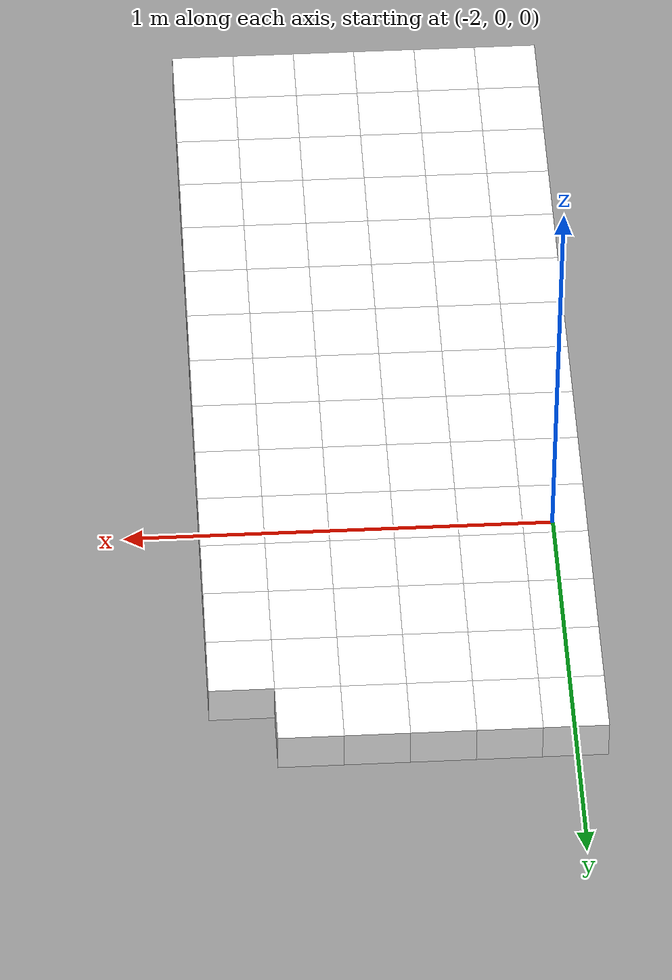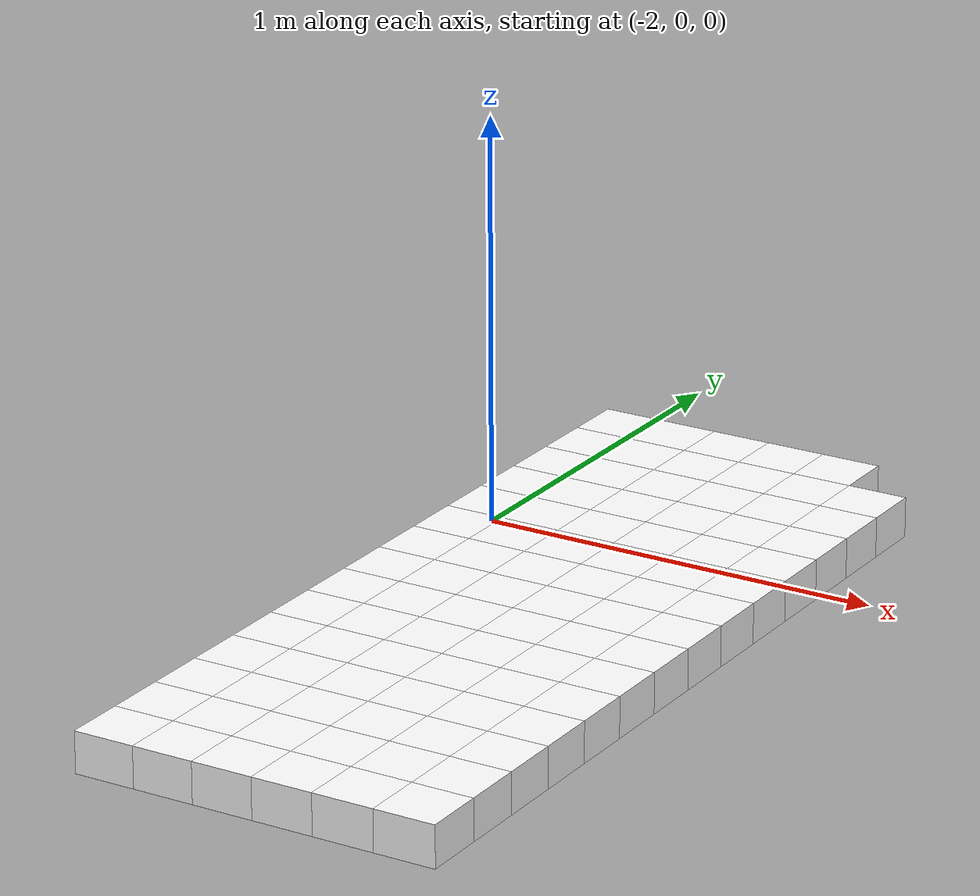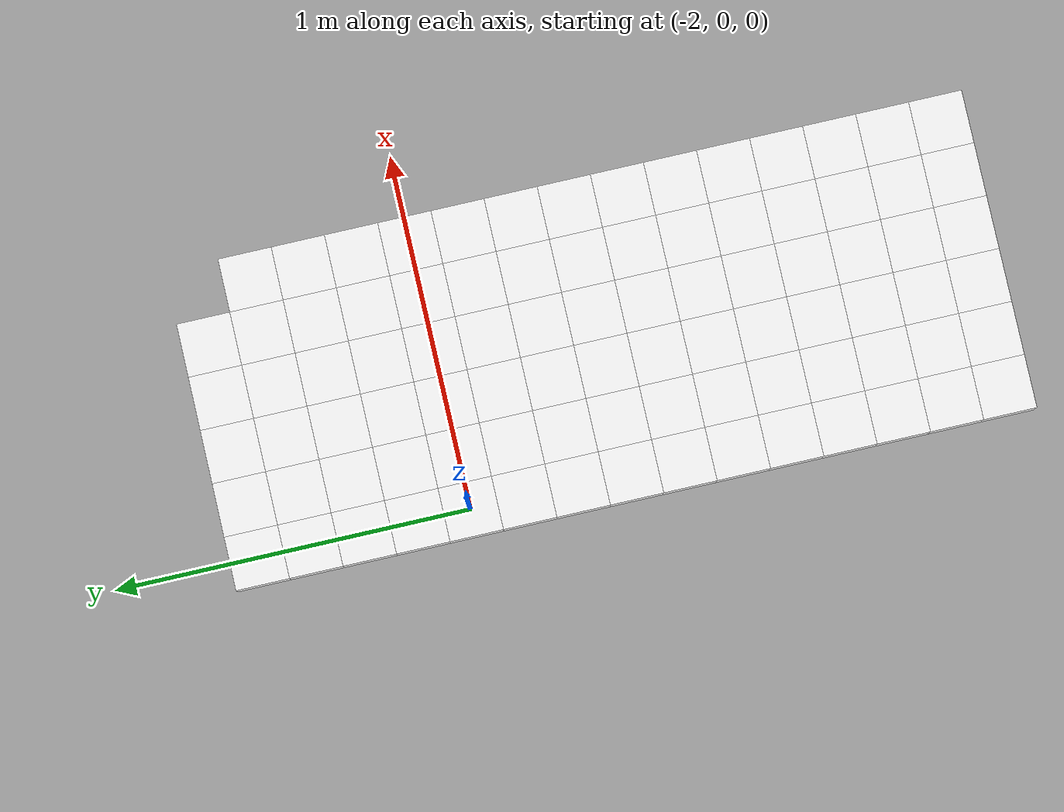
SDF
<sdf version="1.7">
 <world name="default">
  <include><uri>model://sun</uri></include>
  <model name="static_environment">
   <static>true</static>
   <link name="region_0">
    <pose>-2.0 0.6 0.0 0.0 0.0 4.7123</pose>
    <collision name="region_0_collision">
     <geometry><box><size>0.15 0.15 0.1</size></box></geometry>
     <surface><friction><ode><mu>1.0</mu><mu2>1.0</mu2></ode></friction></surface>
    </collision>
    <visual name="region_0_visual">
     <geometry><box><size>0.15 0.15 0.1</size></box></geometry>
     <material><ambient>1.0 1.0 1.0 1.0</ambient><diffuse>1.0 1.0 1.0 1.0</diffuse></material>
    </visual>
   </link>
   <link name="region_1">
    <pose>-2.0000133470576857 0.4500000005938132 0.0 0.0 0.0 4.7123</pose>
    <collision name="region_1_collision">
     <geometry><box><size>0.15 0.15 0.1</size></box></geometry>
     <surface><friction><ode><mu>1.0</mu><mu2>1.0</mu2></ode></friction></surface>
    </collision>
    <visual name="region_1_visual">
     <geometry><box><size>0.15 0.15 0.1</size></box></geometry>
     <material><ambient>1.0 1.0 1.0 1.0</ambient><diffuse>1.0 1.0 1.0 1.0</diffuse></material>
    </visual>
   </link>
   <link name="region_2">
    <pose>-2.000026694115372 0.3000000011876263 0.0 0.0 0.0 4.7123</pose>
    <collision name="region_2_collision">
     <geometry><box><size>0.15 0.15 0.1</size></box></geometry>
     <surface><friction><ode><mu>1.0</mu><mu2>1.0</mu2></ode></friction></surface>
    </collision>
    <visual name="region_2_visual">
     <geometry><box><size>0.15 0.15 0.1</size></box></geometry>
     <material><ambient>1.0 1.0 1.0 1.0</ambient><diffuse>1.0 1.0 1.0 1.0</diffuse></material>
    </visual>
   </link>
   <link name="region_3">
    <pose>-2.0000400411730577 0.15000000178143952 0.0 0.0 0.0 4.7123</pose>
    <collision name="region_3_collision">
     <geometry><box><size>0.15 0.15 0.1</size></box></geometry>
     <surface><friction><ode><mu>1.0</mu><mu2>1.0</mu2></ode></friction></surface>
    </collision>
    <visual name="region_3_visual">
     <geometry><box><size>0.15 0.15 0.1</size></box></geometry>
     <material><ambient>1.0 1.0 1.0 1.0</ambient><diffuse>1.0 1.0 1.0 1.0</diffuse></material>
    </visual>
   </link>
   <link name="region_4">
    <pose>-2.0000533882307434 2.375252661224181e-09 0.0 0.0 0.0 4.7123</pose>
    <collision name="region_4_collision">
     <geometry><box><size>0.15 0.15 0.1</size></box></geometry>
     <surface><friction><ode><mu>1.0</mu><mu2>1.0</mu2></ode></friction></surface>
    </collision>
    <visual name="region_4_visual">
     <geometry><box><size>0.15 0.15 0.1</size></box></geometry>
     <material><ambient>1.0 1.0 1.0 1.0</ambient><diffuse>1.0 1.0 1.0 1.0</diffuse></material>
    </visual>
   </link>
   <link name="region_5">
    <pose>-2.0000667352884296 -0.14999999703093414 0.0 0.0 0.0 4.7123</pose>
    <collision name="region_5_collision">
     <geometry><box><size>0.15 0.15 0.1</size></box></geometry>
     <surface><friction><ode><mu>1.0</mu><mu2>1.0</mu2></ode></friction></surface>
    </collision>
    <visual name="region_5_visual">
     <geometry><box><size>0.15 0.15 0.1</size></box></geometry>
     <material><ambient>1.0 1.0 1.0 1.0</ambient><diffuse>1.0 1.0 1.0 1.0</diffuse></material>
    </visual>
   </link>
   <link name="region_6">
    <pose>-2.0000800823461153 -0.29999999643712105 0.0 0.0 0.0 4.7123</pose>
    <collision name="region_6_collision">
     <geometry><box><size>0.15 0.15 0.1</size></box></geometry>
     <surface><friction><ode><mu>1.0</mu><mu2>1.0</mu2></ode></friction></surface>
    </collision>
    <visual name="region_6_visual">
     <geometry><box><size>0.15 0.15 0.1</size></box></geometry>
     <material><ambient>1.0 1.0 1.0 1.0</ambient><diffuse>1.0 1.0 1.0 1.0</diffuse></material>
    </visual>
   </link>
   <link name="region_7">
    <pose>-2.000093429403801 -0.44999999584330796 0.0 0.0 0.0 4.7123</pose>
    <collision name="region_7_collision">
     <geometry><box><size>0.15 0.15 0.1</size></box></geometry>
     <surface><friction><ode><mu>1.0</mu><mu2>1.0</mu2></ode></friction></surface>
    </collision>
    <visual name="region_7_visual">
     <geometry><box><size>0.15 0.15 0.1</size></box></geometry>
     <material><ambient>1.0 1.0 1.0 1.0</ambient><diffuse>1.0 1.0 1.0 1.0</diffuse></material>
    </visual>
   </link>
   <link name="region_8">
    <pose>-2.000106776461487 -0.5999999952494947 0.0 0.0 0.0 4.7123</pose>
    <collision name="region_8_collision">
     <geometry><box><size>0.15 0.15 0.1</size></box></geometry>
     <surface><friction><ode><mu>1.0</mu><mu2>1.0</mu2></ode></friction></surface>
    </collision>
    <visual name="region_8_visual">
     <geometry><box><size>0.15 0.15 0.1</size></box></geometry>
     <material><ambient>1.0 1.0 1.0 1.0</ambient><diffuse>1.0 1.0 1.0 1.0</diffuse></material>
    </visual>
   </link>
   <link name="region_9">
    <pose>-2.000120123519173 -0.7499999946556813 0.0 0.0 0.0 4.7123</pose>
    <collision name="region_9_collision">
     <geometry><box><size>0.15 0.15 0.1</size></box></geometry>
     <surface><friction><ode><mu>1.0</mu><mu2>1.0</mu2></ode></friction></surface>
    </collision>
    <visual name="region_9_visual">
     <geometry><box><size>0.15 0.15 0.1</size></box></geometry>
     <material><ambient>1.0 1.0 1.0 1.0</ambient><diffuse>1.0 1.0 1.0 1.0</diffuse></material>
    </visual>
   </link>
   <link name="region_10">
    <pose>-2.0001334705768588 -0.8999999940618683 0.0 0.0 0.0 4.7123</pose>
    <collision name="region_10_collision">
     <geometry><box><size>0.15 0.15 0.1</size></box></geometry>
     <surface><friction><ode><mu>1.0</mu><mu2>1.0</mu2></ode></friction></surface>
    </collision>
    <visual name="region_10_visual">
     <geometry><box><size>0.15 0.15 0.1</size></box></geometry>
     <material><ambient>1.0 1.0 1.0 1.0</ambient><diffuse>1.0 1.0 1.0 1.0</diffuse></material>
    </visual>
   </link>
   <link name="region_11">
    <pose>-2.0001468176345445 -1.049999993468055 0.0 0.0 0.0 4.7123</pose>
    <collision name="region_11_collision">
     <geometry><box><size>0.15 0.15 0.1</size></box></geometry>
     <surface><friction><ode><mu>1.0</mu><mu2>1.0</mu2></ode></friction></surface>
    </collision>
    <visual name="region_11_visual">
     <geometry><box><size>0.15 0.15 0.1</size></box></geometry>
     <material><ambient>1.0 1.0 1.0 1.0</ambient><diffuse>1.0 1.0 1.0 1.0</diffuse></material>
    </visual>
   </link>
   <link name="region_12">
    <pose>-2.0001601646922307 -1.1999999928742415 0.0 0.0 0.0 4.7123</pose>
    <collision name="region_12_collision">
     <geometry><box><size>0.15 0.15 0.1</size></box></geometry>
     <surface><friction><ode><mu>1.0</mu><mu2>1.0</mu2></ode></friction></surface>
    </collision>
    <visual name="region_12_visual">
     <geometry><box><size>0.15 0.15 0.1</size></box></geometry>
     <material><ambient>1.0 1.0 1.0 1.0</ambient><diffuse>1.0 1.0 1.0 1.0</diffuse></material>
    </visual>
   </link>
   <link name="region_13">
    <pose>-2.0001735117499164 -1.3499999922804284 0.0 0.0 0.0 4.7123</pose>
    <collision name="region_13_collision">
     <geometry><box><size>0.15 0.15 0.1</size></box></geometry>
     <surface><friction><ode><mu>1.0</mu><mu2>1.0</mu2></ode></friction></surface>
    </collision>
    <visual name="region_13_visual">
     <geometry><box><size>0.15 0.15 0.1</size></box></geometry>
     <material><ambient>1.0 1.0 1.0 1.0</ambient><diffuse>1.0 1.0 1.0 1.0</diffuse></material>
    </visual>
   </link>
   <link name="region_14">
    <pose>-2.000186858807602 -1.4999999916866154 0.0 0.0 0.0 4.7123</pose>
    <collision name="region_14_collision">
     <geometry><box><size>0.15 0.15 0.1</size></box></geometry>
     <surface><friction><ode><mu>1.0</mu><mu2>1.0</mu2></ode></friction></surface>
    </collision>
    <visual name="region_14_visual">
     <geometry><box><size>0.15 0.15 0.1</size></box></geometry>
     <material><ambient>1.0 1.0 1.0 1.0</ambient><diffuse>1.0 1.0 1.0 1.0</diffuse></material>
    </visual>
   </link>
   <link name="region_20">
    <pose>-1.850000000593813 0.5999866529423141 0.0 0.0 0.0 4.7123</pose>
    <collision name="region_20_collision">
     <geometry><box><size>0.15 0.15 0.1</size></box></geometry>
     <surface><friction><ode><mu>1.0</mu><mu2>1.0</mu2></ode></friction></surface>
    </collision>
    <visual name="region_20_visual">
     <geometry><box><size>0.15 0.15 0.1</size></box></geometry>
     <material><ambient>1.0 1.0 1.0 1.0</ambient><diffuse>1.0 1.0 1.0 1.0</diffuse></material>
    </visual>
   </link>
   <link name="region_21">
    <pose>-1.850013347651499 0.44998665353612727 0.0 0.0 0.0 4.7123</pose>
    <collision name="region_21_collision">
     <geometry><box><size>0.15 0.15 0.1</size></box></geometry>
     <surface><friction><ode><mu>1.0</mu><mu2>1.0</mu2></ode></friction></surface>
    </collision>
    <visual name="region_21_visual">
     <geometry><box><size>0.15 0.15 0.1</size></box></geometry>
     <material><ambient>1.0 1.0 1.0 1.0</ambient><diffuse>1.0 1.0 1.0 1.0</diffuse></material>
    </visual>
   </link>
   <link name="region_22">
    <pose>-1.850026694709185 0.29998665412994047 0.0 0.0 0.0 4.7123</pose>
    <collision name="region_22_collision">
     <geometry><box><size>0.15 0.15 0.1</size></box></geometry>
     <surface><friction><ode><mu>1.0</mu><mu2>1.0</mu2></ode></friction></surface>
    </collision>
    <visual name="region_22_visual">
     <geometry><box><size>0.15 0.15 0.1</size></box></geometry>
     <material><ambient>1.0 1.0 1.0 1.0</ambient><diffuse>1.0 1.0 1.0 1.0</diffuse></material>
    </visual>
   </link>
   <link name="region_23">
    <pose>-1.8500400417668708 0.14998665472375367 0.0 0.0 0.0 4.7123</pose>
    <collision name="region_23_collision">
     <geometry><box><size>0.15 0.15 0.1</size></box></geometry>
     <surface><friction><ode><mu>1.0</mu><mu2>1.0</mu2></ode></friction></surface>
    </collision>
    <visual name="region_23_visual">
     <geometry><box><size>0.15 0.15 0.1</size></box></geometry>
     <material><ambient>1.0 1.0 1.0 1.0</ambient><diffuse>1.0 1.0 1.0 1.0</diffuse></material>
    </visual>
   </link>
   <link name="region_24">
    <pose>-1.8500533888245567 -1.3344682433191757e-05 0.0 0.0 0.0 4.7123</pose>
    <collision name="region_24_collision">
     <geometry><box><size>0.15 0.15 0.1</size></box></geometry>
     <surface><friction><ode><mu>1.0</mu><mu2>1.0</mu2></ode></friction></surface>
    </collision>
    <visual name="region_24_visual">
     <geometry><box><size>0.15 0.15 0.1</size></box></geometry>
     <material><ambient>1.0 1.0 1.0 1.0</ambient><diffuse>1.0 1.0 1.0 1.0</diffuse></material>
    </visual>
   </link>
   <link name="region_25">
    <pose>-1.8500667358822425 -0.15001334408862 0.0 0.0 0.0 4.7123</pose>
    <collision name="region_25_collision">
     <geometry><box><size>0.15 0.15 0.1</size></box></geometry>
     <surface><friction><ode><mu>1.0</mu><mu2>1.0</mu2></ode></friction></surface>
    </collision>
    <visual name="region_25_visual">
     <geometry><box><size>0.15 0.15 0.1</size></box></geometry>
     <material><ambient>1.0 1.0 1.0 1.0</ambient><diffuse>1.0 1.0 1.0 1.0</diffuse></material>
    </visual>
   </link>
   <link name="region_26">
    <pose>-1.8500800829399284 -0.3000133434948069 0.0 0.0 0.0 4.7123</pose>
    <collision name="region_26_collision">
     <geometry><box><size>0.15 0.15 0.1</size></box></geometry>
     <surface><friction><ode><mu>1.0</mu><mu2>1.0</mu2></ode></friction></surface>
    </collision>
    <visual name="region_26_visual">
     <geometry><box><size>0.15 0.15 0.1</size></box></geometry>
     <material><ambient>1.0 1.0 1.0 1.0</ambient><diffuse>1.0 1.0 1.0 1.0</diffuse></material>
    </visual>
   </link>
   <link name="region_27">
    <pose>-1.8500934299976144 -0.45001334290099393 0.0 0.0 0.0 4.7123</pose>
    <collision name="region_27_collision">
     <geometry><box><size>0.15 0.15 0.1</size></box></geometry>
     <surface><friction><ode><mu>1.0</mu><mu2>1.0</mu2></ode></friction></surface>
    </collision>
    <visual name="region_27_visual">
     <geometry><box><size>0.15 0.15 0.1</size></box></geometry>
     <material><ambient>1.0 1.0 1.0 1.0</ambient><diffuse>1.0 1.0 1.0 1.0</diffuse></material>
    </visual>
   </link>
   <link name="region_28">
    <pose>-1.8501067770553001 -0.6000133423071806 0.0 0.0 0.0 4.7123</pose>
    <collision name="region_28_collision">
     <geometry><box><size>0.15 0.15 0.1</size></box></geometry>
     <surface><friction><ode><mu>1.0</mu><mu2>1.0</mu2></ode></friction></surface>
    </collision>
    <visual name="region_28_visual">
     <geometry><box><size>0.15 0.15 0.1</size></box></geometry>
     <material><ambient>1.0 1.0 1.0 1.0</ambient><diffuse>1.0 1.0 1.0 1.0</diffuse></material>
    </visual>
   </link>
   <link name="region_29">
    <pose>-1.850120124112986 -0.7500133417133673 0.0 0.0 0.0 4.7123</pose>
    <collision name="region_29_collision">
     <geometry><box><size>0.15 0.15 0.1</size></box></geometry>
     <surface><friction><ode><mu>1.0</mu><mu2>1.0</mu2></ode></friction></surface>
    </collision>
    <visual name="region_29_visual">
     <geometry><box><size>0.15 0.15 0.1</size></box></geometry>
     <material><ambient>1.0 1.0 1.0 1.0</ambient><diffuse>1.0 1.0 1.0 1.0</diffuse></material>
    </visual>
   </link>
   <link name="region_30">
    <pose>-1.8501334711706718 -0.9000133411195542 0.0 0.0 0.0 4.7123</pose>
    <collision name="region_30_collision">
     <geometry><box><size>0.15 0.15 0.1</size></box></geometry>
     <surface><friction><ode><mu>1.0</mu><mu2>1.0</mu2></ode></friction></surface>
    </collision>
    <visual name="region_30_visual">
     <geometry><box><size>0.15 0.15 0.1</size></box></geometry>
     <material><ambient>1.0 1.0 1.0 1.0</ambient><diffuse>1.0 1.0 1.0 1.0</diffuse></material>
    </visual>
   </link>
   <link name="region_31">
    <pose>-1.8501468182283578 -1.0500133405257408 0.0 0.0 0.0 4.7123</pose>
    <collision name="region_31_collision">
     <geometry><box><size>0.15 0.15 0.1</size></box></geometry>
     <surface><friction><ode><mu>1.0</mu><mu2>1.0</mu2></ode></friction></surface>
    </collision>
    <visual name="region_31_visual">
     <geometry><box><size>0.15 0.15 0.1</size></box></geometry>
     <material><ambient>1.0 1.0 1.0 1.0</ambient><diffuse>1.0 1.0 1.0 1.0</diffuse></material>
    </visual>
   </link>
   <link name="region_32">
    <pose>-1.8501601652860438 -1.2000133399319277 0.0 0.0 0.0 4.7123</pose>
    <collision name="region_32_collision">
     <geometry><box><size>0.15 0.15 0.1</size></box></geometry>
     <surface><friction><ode><mu>1.0</mu><mu2>1.0</mu2></ode></friction></surface>
    </collision>
    <visual name="region_32_visual">
     <geometry><box><size>0.15 0.15 0.1</size></box></geometry>
     <material><ambient>1.0 1.0 1.0 1.0</ambient><diffuse>1.0 1.0 1.0 1.0</diffuse></material>
    </visual>
   </link>
   <link name="region_33">
    <pose>-1.8501735123437295 -1.3500133393381142 0.0 0.0 0.0 4.7123</pose>
    <collision name="region_33_collision">
     <geometry><box><size>0.15 0.15 0.1</size></box></geometry>
     <surface><friction><ode><mu>1.0</mu><mu2>1.0</mu2></ode></friction></surface>
    </collision>
    <visual name="region_33_visual">
     <geometry><box><size>0.15 0.15 0.1</size></box></geometry>
     <material><ambient>1.0 1.0 1.0 1.0</ambient><diffuse>1.0 1.0 1.0 1.0</diffuse></material>
    </visual>
   </link>
   <link name="region_34">
    <pose>-1.8501868594014155 -1.500013338744301 0.0 0.0 0.0 4.7123</pose>
    <collision name="region_34_collision">
     <geometry><box><size>0.15 0.15 0.1</size></box></geometry>
     <surface><friction><ode><mu>1.0</mu><mu2>1.0</mu2></ode></friction></surface>
    </collision>
    <visual name="region_34_visual">
     <geometry><box><size>0.15 0.15 0.1</size></box></geometry>
     <material><ambient>1.0 1.0 1.0 1.0</ambient><diffuse>1.0 1.0 1.0 1.0</diffuse></material>
    </visual>
   </link>
   <link name="region_40">
    <pose>-1.7000000011876264 0.5999733058846283 0.0 0.0 0.0 4.7123</pose>
    <collision name="region_40_collision">
     <geometry><box><size>0.15 0.15 0.1</size></box></geometry>
     <surface><friction><ode><mu>1.0</mu><mu2>1.0</mu2></ode></friction></surface>
    </collision>
    <visual name="region_40_visual">
     <geometry><box><size>0.15 0.15 0.1</size></box></geometry>
     <material><ambient>1.0 1.0 1.0 1.0</ambient><diffuse>1.0 1.0 1.0 1.0</diffuse></material>
    </visual>
   </link>
   <link name="region_41">
    <pose>-1.7000133482453121 0.44997330647844136 0.0 0.0 0.0 4.7123</pose>
    <collision name="region_41_collision">
     <geometry><box><size>0.15 0.15 0.1</size></box></geometry>
     <surface><friction><ode><mu>1.0</mu><mu2>1.0</mu2></ode></friction></surface>
    </collision>
    <visual name="region_41_visual">
     <geometry><box><size>0.15 0.15 0.1</size></box></geometry>
     <material><ambient>1.0 1.0 1.0 1.0</ambient><diffuse>1.0 1.0 1.0 1.0</diffuse></material>
    </visual>
   </link>
   <link name="region_42">
    <pose>-1.700026695302998 0.29997330707225456 0.0 0.0 0.0 4.7123</pose>
    <collision name="region_42_collision">
     <geometry><box><size>0.15 0.15 0.1</size></box></geometry>
     <surface><friction><ode><mu>1.0</mu><mu2>1.0</mu2></ode></friction></surface>
    </collision>
    <visual name="region_42_visual">
     <geometry><box><size>0.15 0.15 0.1</size></box></geometry>
     <material><ambient>1.0 1.0 1.0 1.0</ambient><diffuse>1.0 1.0 1.0 1.0</diffuse></material>
    </visual>
   </link>
   <link name="region_43">
    <pose>-1.7000400423606838 0.14997330766606776 0.0 0.0 0.0 4.7123</pose>
    <collision name="region_43_collision">
     <geometry><box><size>0.15 0.15 0.1</size></box></geometry>
     <surface><friction><ode><mu>1.0</mu><mu2>1.0</mu2></ode></friction></surface>
    </collision>
    <visual name="region_43_visual">
     <geometry><box><size>0.15 0.15 0.1</size></box></geometry>
     <material><ambient>1.0 1.0 1.0 1.0</ambient><diffuse>1.0 1.0 1.0 1.0</diffuse></material>
    </visual>
   </link>
   <link name="region_44">
    <pose>-1.7000533894183698 -2.6691740119044738e-05 0.0 0.0 0.0 4.7123</pose>
    <collision name="region_44_collision">
     <geometry><box><size>0.15 0.15 0.1</size></box></geometry>
     <surface><friction><ode><mu>1.0</mu><mu2>1.0</mu2></ode></friction></surface>
    </collision>
    <visual name="region_44_visual">
     <geometry><box><size>0.15 0.15 0.1</size></box></geometry>
     <material><ambient>1.0 1.0 1.0 1.0</ambient><diffuse>1.0 1.0 1.0 1.0</diffuse></material>
    </visual>
   </link>
   <link name="region_45">
    <pose>-1.7000667364760558 -0.15002669114630585 0.0 0.0 0.0 4.7123</pose>
    <collision name="region_45_collision">
     <geometry><box><size>0.15 0.15 0.1</size></box></geometry>
     <surface><friction><ode><mu>1.0</mu><mu2>1.0</mu2></ode></friction></surface>
    </collision>
    <visual name="region_45_visual">
     <geometry><box><size>0.15 0.15 0.1</size></box></geometry>
     <material><ambient>1.0 1.0 1.0 1.0</ambient><diffuse>1.0 1.0 1.0 1.0</diffuse></material>
    </visual>
   </link>
   <link name="region_46">
    <pose>-1.7000800835337415 -0.30002669055249276 0.0 0.0 0.0 4.7123</pose>
    <collision name="region_46_collision">
     <geometry><box><size>0.15 0.15 0.1</size></box></geometry>
     <surface><friction><ode><mu>1.0</mu><mu2>1.0</mu2></ode></friction></surface>
    </collision>
    <visual name="region_46_visual">
     <geometry><box><size>0.15 0.15 0.1</size></box></geometry>
     <material><ambient>1.0 1.0 1.0 1.0</ambient><diffuse>1.0 1.0 1.0 1.0</diffuse></material>
    </visual>
   </link>
   <link name="region_47">
    <pose>-1.7000934305914275 -0.45002668995867967 0.0 0.0 0.0 4.7123</pose>
    <collision name="region_47_collision">
     <geometry><box><size>0.15 0.15 0.1</size></box></geometry>
     <surface><friction><ode><mu>1.0</mu><mu2>1.0</mu2></ode></friction></surface>
    </collision>
    <visual name="region_47_visual">
     <geometry><box><size>0.15 0.15 0.1</size></box></geometry>
     <material><ambient>1.0 1.0 1.0 1.0</ambient><diffuse>1.0 1.0 1.0 1.0</diffuse></material>
    </visual>
   </link>
   <link name="region_48">
    <pose>-1.7001067776491134 -0.6000266893648664 0.0 0.0 0.0 4.7123</pose>
    <collision name="region_48_collision">
     <geometry><box><size>0.15 0.15 0.1</size></box></geometry>
     <surface><friction><ode><mu>1.0</mu><mu2>1.0</mu2></ode></friction></surface>
    </collision>
    <visual name="region_48_visual">
     <geometry><box><size>0.15 0.15 0.1</size></box></geometry>
     <material><ambient>1.0 1.0 1.0 1.0</ambient><diffuse>1.0 1.0 1.0 1.0</diffuse></material>
    </visual>
   </link>
   <link name="region_49">
    <pose>-1.7001201247067992 -0.750026688771053 0.0 0.0 0.0 4.7123</pose>
    <collision name="region_49_collision">
     <geometry><box><size>0.15 0.15 0.1</size></box></geometry>
     <surface><friction><ode><mu>1.0</mu><mu2>1.0</mu2></ode></friction></surface>
    </collision>
    <visual name="region_49_visual">
     <geometry><box><size>0.15 0.15 0.1</size></box></geometry>
     <material><ambient>1.0 1.0 1.0 1.0</ambient><diffuse>1.0 1.0 1.0 1.0</diffuse></material>
    </visual>
   </link>
   <link name="region_50">
    <pose>-1.7001334717644851 -0.90002668817724 0.0 0.0 0.0 4.7123</pose>
    <collision name="region_50_collision">
     <geometry><box><size>0.15 0.15 0.1</size></box></geometry>
     <surface><friction><ode><mu>1.0</mu><mu2>1.0</mu2></ode></friction></surface>
    </collision>
    <visual name="region_50_visual">
     <geometry><box><size>0.15 0.15 0.1</size></box></geometry>
     <material><ambient>1.0 1.0 1.0 1.0</ambient><diffuse>1.0 1.0 1.0 1.0</diffuse></material>
    </visual>
   </link>
   <link name="region_51">
    <pose>-1.7001468188221711 -1.0500266875834265 0.0 0.0 0.0 4.7123</pose>
    <collision name="region_51_collision">
     <geometry><box><size>0.15 0.15 0.1</size></box></geometry>
     <surface><friction><ode><mu>1.0</mu><mu2>1.0</mu2></ode></friction></surface>
    </collision>
    <visual name="region_51_visual">
     <geometry><box><size>0.15 0.15 0.1</size></box></geometry>
     <material><ambient>1.0 1.0 1.0 1.0</ambient><diffuse>1.0 1.0 1.0 1.0</diffuse></material>
    </visual>
   </link>
   <link name="region_52">
    <pose>-1.7001601658798569 -1.2000266869896135 0.0 0.0 0.0 4.7123</pose>
    <collision name="region_52_collision">
     <geometry><box><size>0.15 0.15 0.1</size></box></geometry>
     <surface><friction><ode><mu>1.0</mu><mu2>1.0</mu2></ode></friction></surface>
    </collision>
    <visual name="region_52_visual">
     <geometry><box><size>0.15 0.15 0.1</size></box></geometry>
     <material><ambient>1.0 1.0 1.0 1.0</ambient><diffuse>1.0 1.0 1.0 1.0</diffuse></material>
    </visual>
   </link>
   <link name="region_53">
    <pose>-1.7001735129375426 -1.3500266863958 0.0 0.0 0.0 4.7123</pose>
    <collision name="region_53_collision">
     <geometry><box><size>0.15 0.15 0.1</size></box></geometry>
     <surface><friction><ode><mu>1.0</mu><mu2>1.0</mu2></ode></friction></surface>
    </collision>
    <visual name="region_53_visual">
     <geometry><box><size>0.15 0.15 0.1</size></box></geometry>
     <material><ambient>1.0 1.0 1.0 1.0</ambient><diffuse>1.0 1.0 1.0 1.0</diffuse></material>
    </visual>
   </link>
   <link name="region_54">
    <pose>-1.7001868599952286 -1.5000266858019873 0.0 0.0 0.0 4.7123</pose>
    <collision name="region_54_collision">
     <geometry><box><size>0.15 0.15 0.1</size></box></geometry>
     <surface><friction><ode><mu>1.0</mu><mu2>1.0</mu2></ode></friction></surface>
    </collision>
    <visual name="region_54_visual">
     <geometry><box><size>0.15 0.15 0.1</size></box></geometry>
     <material><ambient>1.0 1.0 1.0 1.0</ambient><diffuse>1.0 1.0 1.0 1.0</diffuse></material>
    </visual>
   </link>
   <link name="region_60">
    <pose>-1.5500000017814395 0.5999599588269423 0.0 0.0 0.0 4.7123</pose>
    <collision name="region_60_collision">
     <geometry><box><size>0.15 0.15 0.1</size></box></geometry>
     <surface><friction><ode><mu>1.0</mu><mu2>1.0</mu2></ode></friction></surface>
    </collision>
    <visual name="region_60_visual">
     <geometry><box><size>0.15 0.15 0.1</size></box></geometry>
     <material><ambient>1.0 1.0 1.0 1.0</ambient><diffuse>1.0 1.0 1.0 1.0</diffuse></material>
    </visual>
   </link>
   <link name="region_61">
    <pose>-1.5500133488391254 0.4499599594207555 0.0 0.0 0.0 4.7123</pose>
    <collision name="region_61_collision">
     <geometry><box><size>0.15 0.15 0.1</size></box></geometry>
     <surface><friction><ode><mu>1.0</mu><mu2>1.0</mu2></ode></friction></surface>
    </collision>
    <visual name="region_61_visual">
     <geometry><box><size>0.15 0.15 0.1</size></box></geometry>
     <material><ambient>1.0 1.0 1.0 1.0</ambient><diffuse>1.0 1.0 1.0 1.0</diffuse></material>
    </visual>
   </link>
   <link name="region_62">
    <pose>-1.5500266958968112 0.2999599600145687 0.0 0.0 0.0 4.7123</pose>
    <collision name="region_62_collision">
     <geometry><box><size>0.15 0.15 0.1</size></box></geometry>
     <surface><friction><ode><mu>1.0</mu><mu2>1.0</mu2></ode></friction></surface>
    </collision>
    <visual name="region_62_visual">
     <geometry><box><size>0.15 0.15 0.1</size></box></geometry>
     <material><ambient>1.0 1.0 1.0 1.0</ambient><diffuse>1.0 1.0 1.0 1.0</diffuse></material>
    </visual>
   </link>
   <link name="region_63">
    <pose>-1.5500400429544972 0.1499599606083819 0.0 0.0 0.0 4.7123</pose>
    <collision name="region_63_collision">
     <geometry><box><size>0.15 0.15 0.1</size></box></geometry>
     <surface><friction><ode><mu>1.0</mu><mu2>1.0</mu2></ode></friction></surface>
    </collision>
    <visual name="region_63_visual">
     <geometry><box><size>0.15 0.15 0.1</size></box></geometry>
     <material><ambient>1.0 1.0 1.0 1.0</ambient><diffuse>1.0 1.0 1.0 1.0</diffuse></material>
    </visual>
   </link>
   <link name="region_64">
    <pose>-1.5500533900121831 -4.003879780500874e-05 0.0 0.0 0.0 4.7123</pose>
    <collision name="region_64_collision">
     <geometry><box><size>0.15 0.15 0.1</size></box></geometry>
     <surface><friction><ode><mu>1.0</mu><mu2>1.0</mu2></ode></friction></surface>
    </collision>
    <visual name="region_64_visual">
     <geometry><box><size>0.15 0.15 0.1</size></box></geometry>
     <material><ambient>1.0 1.0 1.0 1.0</ambient><diffuse>1.0 1.0 1.0 1.0</diffuse></material>
    </visual>
   </link>
   <link name="region_65">
    <pose>-1.5500667370698689 -0.1500400382039918 0.0 0.0 0.0 4.7123</pose>
    <collision name="region_65_collision">
     <geometry><box><size>0.15 0.15 0.1</size></box></geometry>
     <surface><friction><ode><mu>1.0</mu><mu2>1.0</mu2></ode></friction></surface>
    </collision>
    <visual name="region_65_visual">
     <geometry><box><size>0.15 0.15 0.1</size></box></geometry>
     <material><ambient>1.0 1.0 1.0 1.0</ambient><diffuse>1.0 1.0 1.0 1.0</diffuse></material>
    </visual>
   </link>
   <link name="region_66">
    <pose>-1.5500800841275548 -0.3000400376101787 0.0 0.0 0.0 4.7123</pose>
    <collision name="region_66_collision">
     <geometry><box><size>0.15 0.15 0.1</size></box></geometry>
     <surface><friction><ode><mu>1.0</mu><mu2>1.0</mu2></ode></friction></surface>
    </collision>
    <visual name="region_66_visual">
     <geometry><box><size>0.15 0.15 0.1</size></box></geometry>
     <material><ambient>1.0 1.0 1.0 1.0</ambient><diffuse>1.0 1.0 1.0 1.0</diffuse></material>
    </visual>
   </link>
   <link name="region_67">
    <pose>-1.5500934311852408 -0.45004003701636563 0.0 0.0 0.0 4.7123</pose>
    <collision name="region_67_collision">
     <geometry><box><size>0.15 0.15 0.1</size></box></geometry>
     <surface><friction><ode><mu>1.0</mu><mu2>1.0</mu2></ode></friction></surface>
    </collision>
    <visual name="region_67_visual">
     <geometry><box><size>0.15 0.15 0.1</size></box></geometry>
     <material><ambient>1.0 1.0 1.0 1.0</ambient><diffuse>1.0 1.0 1.0 1.0</diffuse></material>
    </visual>
   </link>
   <link name="region_68">
    <pose>-1.5501067782429265 -0.6000400364225523 0.0 0.0 0.0 4.7123</pose>
    <collision name="region_68_collision">
     <geometry><box><size>0.15 0.15 0.1</size></box></geometry>
     <surface><friction><ode><mu>1.0</mu><mu2>1.0</mu2></ode></friction></surface>
    </collision>
    <visual name="region_68_visual">
     <geometry><box><size>0.15 0.15 0.1</size></box></geometry>
     <material><ambient>1.0 1.0 1.0 1.0</ambient><diffuse>1.0 1.0 1.0 1.0</diffuse></material>
    </visual>
   </link>
   <link name="region_69">
    <pose>-1.5501201253006125 -0.750040035828739 0.0 0.0 0.0 4.7123</pose>
    <collision name="region_69_collision">
     <geometry><box><size>0.15 0.15 0.1</size></box></geometry>
     <surface><friction><ode><mu>1.0</mu><mu2>1.0</mu2></ode></friction></surface>
    </collision>
    <visual name="region_69_visual">
     <geometry><box><size>0.15 0.15 0.1</size></box></geometry>
     <material><ambient>1.0 1.0 1.0 1.0</ambient><diffuse>1.0 1.0 1.0 1.0</diffuse></material>
    </visual>
   </link>
   <link name="region_70">
    <pose>-1.5501334723582982 -0.9000400352349259 0.0 0.0 0.0 4.7123</pose>
    <collision name="region_70_collision">
     <geometry><box><size>0.15 0.15 0.1</size></box></geometry>
     <surface><friction><ode><mu>1.0</mu><mu2>1.0</mu2></ode></friction></surface>
    </collision>
    <visual name="region_70_visual">
     <geometry><box><size>0.15 0.15 0.1</size></box></geometry>
     <material><ambient>1.0 1.0 1.0 1.0</ambient><diffuse>1.0 1.0 1.0 1.0</diffuse></material>
    </visual>
   </link>
   <link name="region_71">
    <pose>-1.5501468194159842 -1.0500400346411127 0.0 0.0 0.0 4.7123</pose>
    <collision name="region_71_collision">
     <geometry><box><size>0.15 0.15 0.1</size></box></geometry>
     <surface><friction><ode><mu>1.0</mu><mu2>1.0</mu2></ode></friction></surface>
    </collision>
    <visual name="region_71_visual">
     <geometry><box><size>0.15 0.15 0.1</size></box></geometry>
     <material><ambient>1.0 1.0 1.0 1.0</ambient><diffuse>1.0 1.0 1.0 1.0</diffuse></material>
    </visual>
   </link>
   <link name="region_72">
    <pose>-1.55016016647367 -1.2000400340472992 0.0 0.0 0.0 4.7123</pose>
    <collision name="region_72_collision">
     <geometry><box><size>0.15 0.15 0.1</size></box></geometry>
     <surface><friction><ode><mu>1.0</mu><mu2>1.0</mu2></ode></friction></surface>
    </collision>
    <visual name="region_72_visual">
     <geometry><box><size>0.15 0.15 0.1</size></box></geometry>
     <material><ambient>1.0 1.0 1.0 1.0</ambient><diffuse>1.0 1.0 1.0 1.0</diffuse></material>
    </visual>
   </link>
   <link name="region_73">
    <pose>-1.550173513531356 -1.350040033453486 0.0 0.0 0.0 4.7123</pose>
    <collision name="region_73_collision">
     <geometry><box><size>0.15 0.15 0.1</size></box></geometry>
     <surface><friction><ode><mu>1.0</mu><mu2>1.0</mu2></ode></friction></surface>
    </collision>
    <visual name="region_73_visual">
     <geometry><box><size>0.15 0.15 0.1</size></box></geometry>
     <material><ambient>1.0 1.0 1.0 1.0</ambient><diffuse>1.0 1.0 1.0 1.0</diffuse></material>
    </visual>
   </link>
   <link name="region_74">
    <pose>-1.5501868605890419 -1.500040032859673 0.0 0.0 0.0 4.7123</pose>
    <collision name="region_74_collision">
     <geometry><box><size>0.15 0.15 0.1</size></box></geometry>
     <surface><friction><ode><mu>1.0</mu><mu2>1.0</mu2></ode></friction></surface>
    </collision>
    <visual name="region_74_visual">
     <geometry><box><size>0.15 0.15 0.1</size></box></geometry>
     <material><ambient>1.0 1.0 1.0 1.0</ambient><diffuse>1.0 1.0 1.0 1.0</diffuse></material>
    </visual>
   </link>
   <link name="region_80">
    <pose>-1.4000000023752528 0.5999466117692565 0.0 0.0 0.0 4.7123</pose>
    <collision name="region_80_collision">
     <geometry><box><size>0.15 0.15 0.1</size></box></geometry>
     <surface><friction><ode><mu>1.0</mu><mu2>1.0</mu2></ode></friction></surface>
    </collision>
    <visual name="region_80_visual">
     <geometry><box><size>0.15 0.15 0.1</size></box></geometry>
     <material><ambient>1.0 1.0 1.0 1.0</ambient><diffuse>1.0 1.0 1.0 1.0</diffuse></material>
    </visual>
   </link>
   <link name="region_81">
    <pose>-1.4000133494329385 0.44994661236306965 0.0 0.0 0.0 4.7123</pose>
    <collision name="region_81_collision">
     <geometry><box><size>0.15 0.15 0.1</size></box></geometry>
     <surface><friction><ode><mu>1.0</mu><mu2>1.0</mu2></ode></friction></surface>
    </collision>
    <visual name="region_81_visual">
     <geometry><box><size>0.15 0.15 0.1</size></box></geometry>
     <material><ambient>1.0 1.0 1.0 1.0</ambient><diffuse>1.0 1.0 1.0 1.0</diffuse></material>
    </visual>
   </link>
   <link name="region_82">
    <pose>-1.4000266964906243 0.2999466129568828 0.0 0.0 0.0 4.7123</pose>
    <collision name="region_82_collision">
     <geometry><box><size>0.15 0.15 0.1</size></box></geometry>
     <surface><friction><ode><mu>1.0</mu><mu2>1.0</mu2></ode></friction></surface>
    </collision>
    <visual name="region_82_visual">
     <geometry><box><size>0.15 0.15 0.1</size></box></geometry>
     <material><ambient>1.0 1.0 1.0 1.0</ambient><diffuse>1.0 1.0 1.0 1.0</diffuse></material>
    </visual>
   </link>
   <link name="region_83">
    <pose>-1.4000400435483105 0.149946613550696 0.0 0.0 0.0 4.7123</pose>
    <collision name="region_83_collision">
     <geometry><box><size>0.15 0.15 0.1</size></box></geometry>
     <surface><friction><ode><mu>1.0</mu><mu2>1.0</mu2></ode></friction></surface>
    </collision>
    <visual name="region_83_visual">
     <geometry><box><size>0.15 0.15 0.1</size></box></geometry>
     <material><ambient>1.0 1.0 1.0 1.0</ambient><diffuse>1.0 1.0 1.0 1.0</diffuse></material>
    </visual>
   </link>
   <link name="region_84">
    <pose>-1.4000533906059962 -5.338585549086172e-05 0.0 0.0 0.0 4.7123</pose>
    <collision name="region_84_collision">
     <geometry><box><size>0.15 0.15 0.1</size></box></geometry>
     <surface><friction><ode><mu>1.0</mu><mu2>1.0</mu2></ode></friction></surface>
    </collision>
    <visual name="region_84_visual">
     <geometry><box><size>0.15 0.15 0.1</size></box></geometry>
     <material><ambient>1.0 1.0 1.0 1.0</ambient><diffuse>1.0 1.0 1.0 1.0</diffuse></material>
    </visual>
   </link>
   <link name="region_85">
    <pose>-1.400066737663682 -0.15005338526167766 0.0 0.0 0.0 4.7123</pose>
    <collision name="region_85_collision">
     <geometry><box><size>0.15 0.15 0.1</size></box></geometry>
     <surface><friction><ode><mu>1.0</mu><mu2>1.0</mu2></ode></friction></surface>
    </collision>
    <visual name="region_85_visual">
     <geometry><box><size>0.15 0.15 0.1</size></box></geometry>
     <material><ambient>1.0 1.0 1.0 1.0</ambient><diffuse>1.0 1.0 1.0 1.0</diffuse></material>
    </visual>
   </link>
   <link name="region_86">
    <pose>-1.400080084721368 -0.3000533846678646 0.0 0.0 0.0 4.7123</pose>
    <collision name="region_86_collision">
     <geometry><box><size>0.15 0.15 0.1</size></box></geometry>
     <surface><friction><ode><mu>1.0</mu><mu2>1.0</mu2></ode></friction></surface>
    </collision>
    <visual name="region_86_visual">
     <geometry><box><size>0.15 0.15 0.1</size></box></geometry>
     <material><ambient>1.0 1.0 1.0 1.0</ambient><diffuse>1.0 1.0 1.0 1.0</diffuse></material>
    </visual>
   </link>
   <link name="region_87">
    <pose>-1.4000934317790539 -0.4500533840740514 0.0 0.0 0.0 4.7123</pose>
    <collision name="region_87_collision">
     <geometry><box><size>0.15 0.15 0.1</size></box></geometry>
     <surface><friction><ode><mu>1.0</mu><mu2>1.0</mu2></ode></friction></surface>
    </collision>
    <visual name="region_87_visual">
     <geometry><box><size>0.15 0.15 0.1</size></box></geometry>
     <material><ambient>1.0 1.0 1.0 1.0</ambient><diffuse>1.0 1.0 1.0 1.0</diffuse></material>
    </visual>
   </link>
   <link name="region_88">
    <pose>-1.4001067788367396 -0.6000533834802381 0.0 0.0 0.0 4.7123</pose>
    <collision name="region_88_collision">
     <geometry><box><size>0.15 0.15 0.1</size></box></geometry>
     <surface><friction><ode><mu>1.0</mu><mu2>1.0</mu2></ode></friction></surface>
    </collision>
    <visual name="region_88_visual">
     <geometry><box><size>0.15 0.15 0.1</size></box></geometry>
     <material><ambient>1.0 1.0 1.0 1.0</ambient><diffuse>1.0 1.0 1.0 1.0</diffuse></material>
    </visual>
   </link>
   <link name="region_89">
    <pose>-1.4001201258944256 -0.7500533828864248 0.0 0.0 0.0 4.7123</pose>
    <collision name="region_89_collision">
     <geometry><box><size>0.15 0.15 0.1</size></box></geometry>
     <surface><friction><ode><mu>1.0</mu><mu2>1.0</mu2></ode></friction></surface>
    </collision>
    <visual name="region_89_visual">
     <geometry><box><size>0.15 0.15 0.1</size></box></geometry>
     <material><ambient>1.0 1.0 1.0 1.0</ambient><diffuse>1.0 1.0 1.0 1.0</diffuse></material>
    </visual>
   </link>
   <link name="region_90">
    <pose>-1.4001334729521115 -0.9000533822926117 0.0 0.0 0.0 4.7123</pose>
    <collision name="region_90_collision">
     <geometry><box><size>0.15 0.15 0.1</size></box></geometry>
     <surface><friction><ode><mu>1.0</mu><mu2>1.0</mu2></ode></friction></surface>
    </collision>
    <visual name="region_90_visual">
     <geometry><box><size>0.15 0.15 0.1</size></box></geometry>
     <material><ambient>1.0 1.0 1.0 1.0</ambient><diffuse>1.0 1.0 1.0 1.0</diffuse></material>
    </visual>
   </link>
   <link name="region_91">
    <pose>-1.4001468200097973 -1.0500533816987985 0.0 0.0 0.0 4.7123</pose>
    <collision name="region_91_collision">
     <geometry><box><size>0.15 0.15 0.1</size></box></geometry>
     <surface><friction><ode><mu>1.0</mu><mu2>1.0</mu2></ode></friction></surface>
    </collision>
    <visual name="region_91_visual">
     <geometry><box><size>0.15 0.15 0.1</size></box></geometry>
     <material><ambient>1.0 1.0 1.0 1.0</ambient><diffuse>1.0 1.0 1.0 1.0</diffuse></material>
    </visual>
   </link>
   <link name="region_92">
    <pose>-1.400160167067483 -1.200053381104985 0.0 0.0 0.0 4.7123</pose>
    <collision name="region_92_collision">
     <geometry><box><size>0.15 0.15 0.1</size></box></geometry>
     <surface><friction><ode><mu>1.0</mu><mu2>1.0</mu2></ode></friction></surface>
    </collision>
    <visual name="region_92_visual">
     <geometry><box><size>0.15 0.15 0.1</size></box></geometry>
     <material><ambient>1.0 1.0 1.0 1.0</ambient><diffuse>1.0 1.0 1.0 1.0</diffuse></material>
    </visual>
   </link>
   <link name="region_93">
    <pose>-1.4001735141251692 -1.3500533805111719 0.0 0.0 0.0 4.7123</pose>
    <collision name="region_93_collision">
     <geometry><box><size>0.15 0.15 0.1</size></box></geometry>
     <surface><friction><ode><mu>1.0</mu><mu2>1.0</mu2></ode></friction></surface>
    </collision>
    <visual name="region_93_visual">
     <geometry><box><size>0.15 0.15 0.1</size></box></geometry>
     <material><ambient>1.0 1.0 1.0 1.0</ambient><diffuse>1.0 1.0 1.0 1.0</diffuse></material>
    </visual>
   </link>
   <link name="region_94">
    <pose>-1.400186861182855 -1.5000533799173588 0.0 0.0 0.0 4.7123</pose>
    <collision name="region_94_collision">
     <geometry><box><size>0.15 0.15 0.1</size></box></geometry>
     <surface><friction><ode><mu>1.0</mu><mu2>1.0</mu2></ode></friction></surface>
    </collision>
    <visual name="region_94_visual">
     <geometry><box><size>0.15 0.15 0.1</size></box></geometry>
     <material><ambient>1.0 1.0 1.0 1.0</ambient><diffuse>1.0 1.0 1.0 1.0</diffuse></material>
    </visual>
   </link>
   <link name="region_101">
    <pose>-1.2500133500267516 0.4499332653053838 0.0 0.0 0.0 4.7123</pose>
    <collision name="region_101_collision">
     <geometry><box><size>0.15 0.15 0.1</size></box></geometry>
     <surface><friction><ode><mu>1.0</mu><mu2>1.0</mu2></ode></friction></surface>
    </collision>
    <visual name="region_101_visual">
     <geometry><box><size>0.15 0.15 0.1</size></box></geometry>
     <material><ambient>1.0 1.0 1.0 1.0</ambient><diffuse>1.0 1.0 1.0 1.0</diffuse></material>
    </visual>
   </link>
   <link name="region_102">
    <pose>-1.2500266970844376 0.29993326589919694 0.0 0.0 0.0 4.7123</pose>
    <collision name="region_102_collision">
     <geometry><box><size>0.15 0.15 0.1</size></box></geometry>
     <surface><friction><ode><mu>1.0</mu><mu2>1.0</mu2></ode></friction></surface>
    </collision>
    <visual name="region_102_visual">
     <geometry><box><size>0.15 0.15 0.1</size></box></geometry>
     <material><ambient>1.0 1.0 1.0 1.0</ambient><diffuse>1.0 1.0 1.0 1.0</diffuse></material>
    </visual>
   </link>
   <link name="region_103">
    <pose>-1.2500400441421236 0.14993326649301014 0.0 0.0 0.0 4.7123</pose>
    <collision name="region_103_collision">
     <geometry><box><size>0.15 0.15 0.1</size></box></geometry>
     <surface><friction><ode><mu>1.0</mu><mu2>1.0</mu2></ode></friction></surface>
    </collision>
    <visual name="region_103_visual">
     <geometry><box><size>0.15 0.15 0.1</size></box></geometry>
     <material><ambient>1.0 1.0 1.0 1.0</ambient><diffuse>1.0 1.0 1.0 1.0</diffuse></material>
    </visual>
   </link>
   <link name="region_104">
    <pose>-1.2500533911998093 -6.67329131767147e-05 0.0 0.0 0.0 4.7123</pose>
    <collision name="region_104_collision">
     <geometry><box><size>0.15 0.15 0.1</size></box></geometry>
     <surface><friction><ode><mu>1.0</mu><mu2>1.0</mu2></ode></friction></surface>
    </collision>
    <visual name="region_104_visual">
     <geometry><box><size>0.15 0.15 0.1</size></box></geometry>
     <material><ambient>1.0 1.0 1.0 1.0</ambient><diffuse>1.0 1.0 1.0 1.0</diffuse></material>
    </visual>
   </link>
   <link name="region_105">
    <pose>-1.2500667382574953 -0.15006673231936352 0.0 0.0 0.0 4.7123</pose>
    <collision name="region_105_collision">
     <geometry><box><size>0.15 0.15 0.1</size></box></geometry>
     <surface><friction><ode><mu>1.0</mu><mu2>1.0</mu2></ode></friction></surface>
    </collision>
    <visual name="region_105_visual">
     <geometry><box><size>0.15 0.15 0.1</size></box></geometry>
     <material><ambient>1.0 1.0 1.0 1.0</ambient><diffuse>1.0 1.0 1.0 1.0</diffuse></material>
    </visual>
   </link>
   <link name="region_106">
    <pose>-1.2500800853151812 -0.30006673172555043 0.0 0.0 0.0 4.7123</pose>
    <collision name="region_106_collision">
     <geometry><box><size>0.15 0.15 0.1</size></box></geometry>
     <surface><friction><ode><mu>1.0</mu><mu2>1.0</mu2></ode></friction></surface>
    </collision>
    <visual name="region_106_visual">
     <geometry><box><size>0.15 0.15 0.1</size></box></geometry>
     <material><ambient>1.0 1.0 1.0 1.0</ambient><diffuse>1.0 1.0 1.0 1.0</diffuse></material>
    </visual>
   </link>
   <link name="region_107">
    <pose>-1.250093432372867 -0.45006673113173734 0.0 0.0 0.0 4.7123</pose>
    <collision name="region_107_collision">
     <geometry><box><size>0.15 0.15 0.1</size></box></geometry>
     <surface><friction><ode><mu>1.0</mu><mu2>1.0</mu2></ode></friction></surface>
    </collision>
    <visual name="region_107_visual">
     <geometry><box><size>0.15 0.15 0.1</size></box></geometry>
     <material><ambient>1.0 1.0 1.0 1.0</ambient><diffuse>1.0 1.0 1.0 1.0</diffuse></material>
    </visual>
   </link>
   <link name="region_108">
    <pose>-1.250106779430553 -0.600066730537924 0.0 0.0 0.0 4.7123</pose>
    <collision name="region_108_collision">
     <geometry><box><size>0.15 0.15 0.1</size></box></geometry>
     <surface><friction><ode><mu>1.0</mu><mu2>1.0</mu2></ode></friction></surface>
    </collision>
    <visual name="region_108_visual">
     <geometry><box><size>0.15 0.15 0.1</size></box></geometry>
     <material><ambient>1.0 1.0 1.0 1.0</ambient><diffuse>1.0 1.0 1.0 1.0</diffuse></material>
    </visual>
   </link>
   <link name="region_109">
    <pose>-1.250120126488239 -0.7500667299441107 0.0 0.0 0.0 4.7123</pose>
    <collision name="region_109_collision">
     <geometry><box><size>0.15 0.15 0.1</size></box></geometry>
     <surface><friction><ode><mu>1.0</mu><mu2>1.0</mu2></ode></friction></surface>
    </collision>
    <visual name="region_109_visual">
     <geometry><box><size>0.15 0.15 0.1</size></box></geometry>
     <material><ambient>1.0 1.0 1.0 1.0</ambient><diffuse>1.0 1.0 1.0 1.0</diffuse></material>
    </visual>
   </link>
   <link name="region_110">
    <pose>-1.2501334735459246 -0.9000667293502976 0.0 0.0 0.0 4.7123</pose>
    <collision name="region_110_collision">
     <geometry><box><size>0.15 0.15 0.1</size></box></geometry>
     <surface><friction><ode><mu>1.0</mu><mu2>1.0</mu2></ode></friction></surface>
    </collision>
    <visual name="region_110_visual">
     <geometry><box><size>0.15 0.15 0.1</size></box></geometry>
     <material><ambient>1.0 1.0 1.0 1.0</ambient><diffuse>1.0 1.0 1.0 1.0</diffuse></material>
    </visual>
   </link>
   <link name="region_111">
    <pose>-1.2501468206036104 -1.0500667287564842 0.0 0.0 0.0 4.7123</pose>
    <collision name="region_111_collision">
     <geometry><box><size>0.15 0.15 0.1</size></box></geometry>
     <surface><friction><ode><mu>1.0</mu><mu2>1.0</mu2></ode></friction></surface>
    </collision>
    <visual name="region_111_visual">
     <geometry><box><size>0.15 0.15 0.1</size></box></geometry>
     <material><ambient>1.0 1.0 1.0 1.0</ambient><diffuse>1.0 1.0 1.0 1.0</diffuse></material>
    </visual>
   </link>
   <link name="region_112">
    <pose>-1.2501601676612963 -1.2000667281626711 0.0 0.0 0.0 4.7123</pose>
    <collision name="region_112_collision">
     <geometry><box><size>0.15 0.15 0.1</size></box></geometry>
     <surface><friction><ode><mu>1.0</mu><mu2>1.0</mu2></ode></friction></surface>
    </collision>
    <visual name="region_112_visual">
     <geometry><box><size>0.15 0.15 0.1</size></box></geometry>
     <material><ambient>1.0 1.0 1.0 1.0</ambient><diffuse>1.0 1.0 1.0 1.0</diffuse></material>
    </visual>
   </link>
   <link name="region_113">
    <pose>-1.2501735147189823 -1.3500667275688576 0.0 0.0 0.0 4.7123</pose>
    <collision name="region_113_collision">
     <geometry><box><size>0.15 0.15 0.1</size></box></geometry>
     <surface><friction><ode><mu>1.0</mu><mu2>1.0</mu2></ode></friction></surface>
    </collision>
    <visual name="region_113_visual">
     <geometry><box><size>0.15 0.15 0.1</size></box></geometry>
     <material><ambient>1.0 1.0 1.0 1.0</ambient><diffuse>1.0 1.0 1.0 1.0</diffuse></material>
    </visual>
   </link>
   <link name="region_114">
    <pose>-1.250186861776668 -1.500066726975045 0.0 0.0 0.0 4.7123</pose>
    <collision name="region_114_collision">
     <geometry><box><size>0.15 0.15 0.1</size></box></geometry>
     <surface><friction><ode><mu>1.0</mu><mu2>1.0</mu2></ode></friction></surface>
    </collision>
    <visual name="region_114_visual">
     <geometry><box><size>0.15 0.15 0.1</size></box></geometry>
     <material><ambient>1.0 1.0 1.0 1.0</ambient><diffuse>1.0 1.0 1.0 1.0</diffuse></material>
    </visual>
   </link>
  </model>
 </world>
</sdf>
